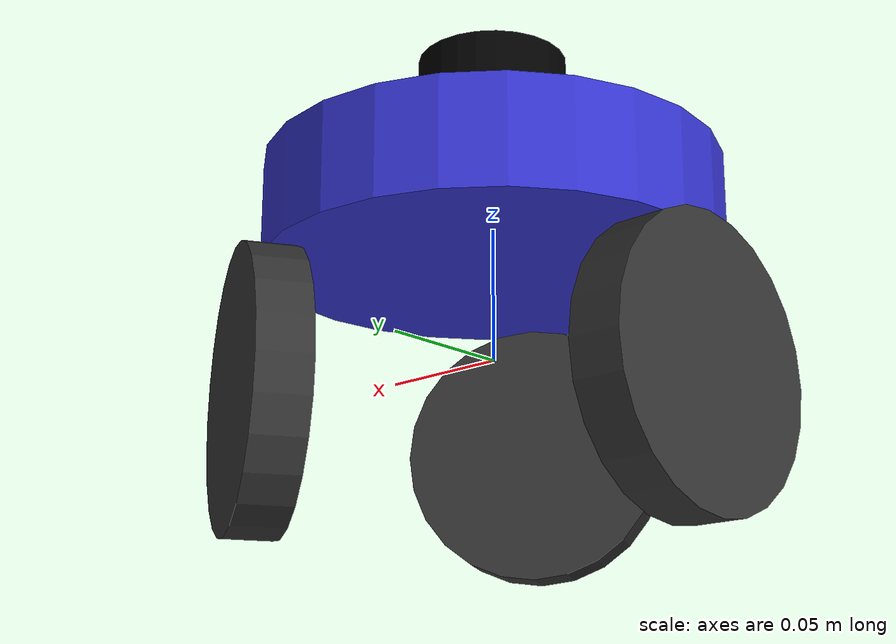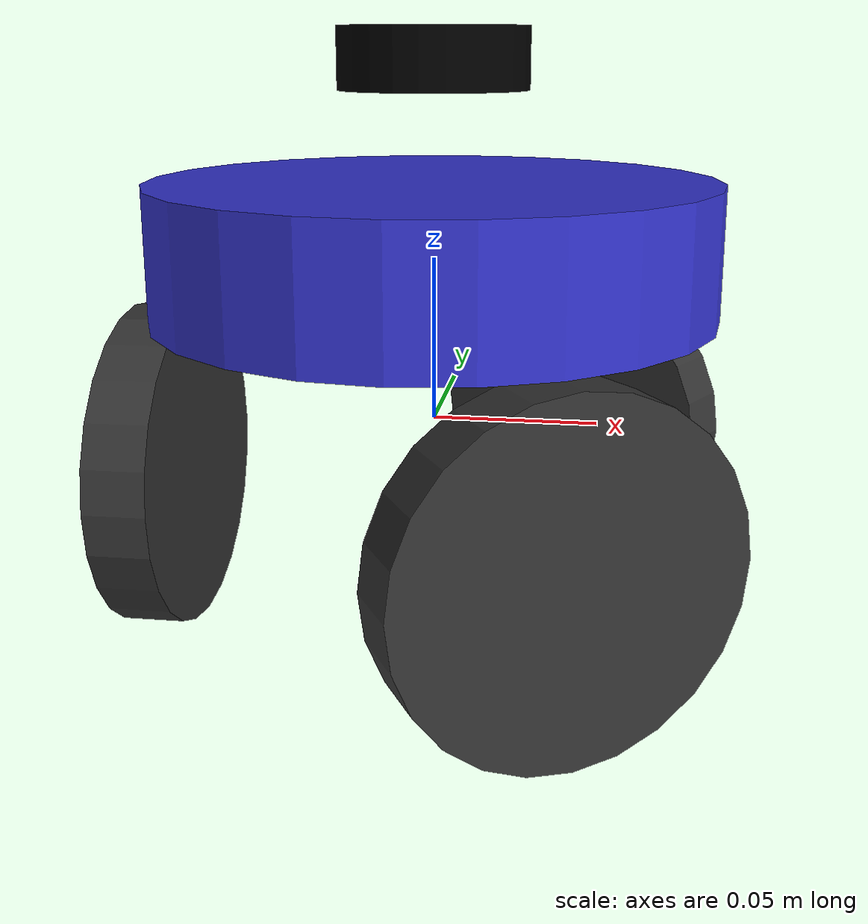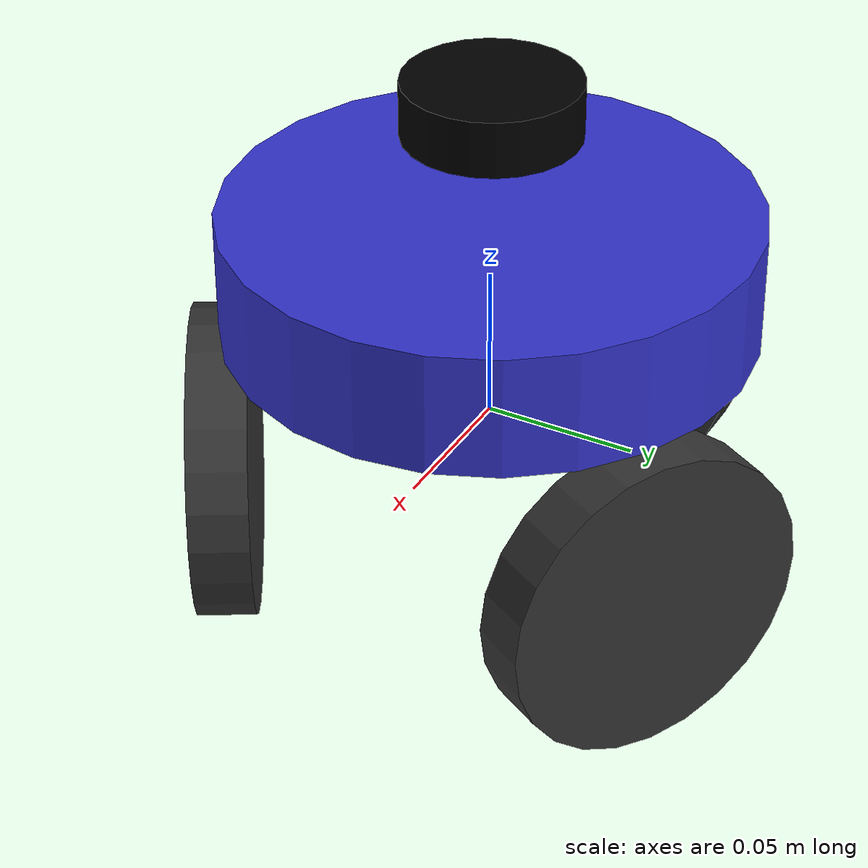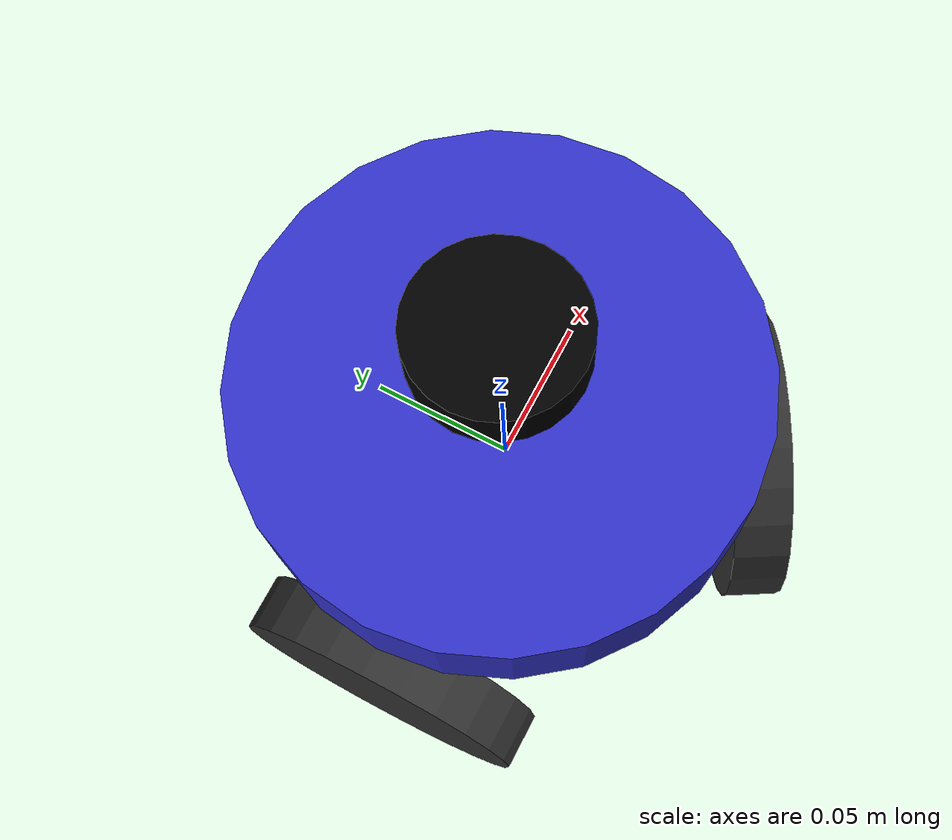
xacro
<?xml version="1.0"?>
<robot xmlns:xacro="http://www.ros.org/wiki/xacro" name="robot">

    <!-- Constants for robot mechanical parameters -->
    <xacro:property name="PI" value="3.1415926535897931"/>
    <xacro:property name="chassis_mass" value="1.074"/>
    <xacro:property name="chassis_height" value="0.04"/>
    <xacro:property name="robot_height" value="0.053"/>
    <xacro:property name="wheel_mass" value="0.105" />
    <xacro:property name="wheel_radius" value="0.0508" />

    <!-- The chassis radius plus half the wheel thickness equals the robot radius -->
    <xacro:property name="chassis_radius" value="0.085"/>
    <xacro:property name="wheel_thickness" value="0.01905" />

    <xacro:include filename="$(find omni)/description/wheel.urdf.xacro"/>
    <xacro:include filename="$(find omni)/description/materials.urdf.xacro"/>
    <xacro:include filename="$(find omni)/description/lidar.urdf.xacro"/>
    <xacro:include filename="$(find omni)/description/ros2_control.urdf.xacro"/>
    <xacro:include filename="$(find omni)/description/gazebo.urdf.xacro"/>

    <!-- Simulation argument -->
    <xacro:arg name="use_sim" default="false"/>

    <link name="base_link"></link>

    <joint name="base_link_joint" type="fixed">
        <origin xyz="0 0 ${robot_height}" rpy="0 0 0" />
        <parent link="base_link"/>
        <child link="chassis_link" />
    </joint>

    <link name="chassis_link">
        <visual name="">
            <origin xyz="0.0 0.0 0.0" rpy="0.0 0.0 0.0"/>
            <geometry>
                <cylinder radius="${chassis_radius}" length="${chassis_height}"/>
            </geometry>
            <material name="blue"/>
        </visual>

        <collision>
            <origin xyz="0.0 0.0 0.0" rpy="0.0 0.0 0.0"/>
            <geometry>
                <cylinder radius="${chassis_radius}" length="${chassis_height}"/>
            </geometry>
            <material name="blue"/>
        </collision>

        <inertial>
            <origin xyz="0.0 0.0 0.0" rpy="0.0 0.0 0.0"/>
            <mass value="1.634"/>
            <inertia ixx="0.00316977667"
                        ixy="0.0"
                        ixz="0.0"
                        iyy="0.00316977667"
                        iyz="0.0"
                        izz="0.005903752"/>
        </inertial>
    </link>

    <!-- 2D lidar mounted above the chassis -->
    <xacro:lidar_sensor parent="chassis_link" prefix="lidar"/>

    <!-- THREE OMNI WHEELS at 120° intervals -->
    <!-- Wheel 1: Rear (180 degrees) -->
    <xacro:wheel parent="chassis_link" suffix="1" theta="${PI}"/>

    <!-- Wheel 2: Front Right (-60 degrees) -->
    <xacro:wheel parent="chassis_link" suffix="2" theta="${-PI/3}"/>

    <!-- Wheel 3: Front Left (60 degrees) -->
    <xacro:wheel parent="chassis_link" suffix="3" theta="${PI/3}"/>

    <!-- ROS2 Control Integration -->
    <xacro:omni_ros2_control name="OmniWheelSystem" prefix=""
                             use_sim="$(arg use_sim)"
                             use_fake_hardware="false"/>

    <!-- Gazebo plugins -->
    <xacro:omni_gazebo name="omni_robot"/>

</robot>

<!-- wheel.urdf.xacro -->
<robot xmlns:xacro="http://www.ros.org/wiki/xacro">
    <xacro:property name="PI" value="3.1415926535897931"/>

    <xacro:macro name="inertial_cylinder" params="mass length radius *origin">
        <inertial>
            <xacro:insert_block name="origin"/>
            <mass value="${mass}" />
            <inertia
                ixx="${(1/12) * mass * (3*radius*radius + length*length)}"
                ixy="0.0"
                ixz="0.0"
                iyy="${(1/12) * mass * (3*radius*radius + length*length)}"
                iyz="0.0"
                izz="${(1/2) * mass * (radius*radius)}" />
        </inertial>
    </xacro:macro>

    <xacro:macro name="wheel" params="parent suffix theta">
        <joint name="wheel${suffix}_joint" type="continuous">
            <origin xyz="${chassis_radius*cos(theta)} ${chassis_radius*sin(theta)} ${-chassis_height/2 - wheel_radius}"
                    rpy="0.0 ${PI/2} ${theta+PI}"/>
            <parent link="${parent}"/>
            <child link="wheel${suffix}_link"/>
            <axis xyz="0.0 0.0 1.0"/>
        </joint>

        <link name="wheel${suffix}_link">
            <visual>
                <origin xyz="0.0 0.0 0.0" rpy="0.0 0.0 0.0"/>
                <geometry>
                    <cylinder radius="${wheel_radius}" length="${wheel_thickness}"/>
                </geometry>
                <material name="grey"/>
            </visual>

            <collision>
                <origin xyz="0.0 0.0 0.0" rpy="0.0 0.0 0.0"/>
                <geometry>
                    <cylinder radius="${wheel_radius}" length="${wheel_thickness}"/>
                </geometry>
            </collision>

            <inertial>
                <origin xyz="0.0 0.0 0.0" rpy="0.0 0.0 0.0"/>
                <mass value="0.113"/>
                <inertia ixx="0.000089064"
                         ixy="0.0"
                         ixz="0.0"
                         iyy="0.000089064"
                         iyz="0.0"
                         izz="0.000173339"/>
            </inertial>
        </link>

        <gazebo reference="wheel${suffix}_link">
            <material>Gazebo/Grey</material>
            <mu1>1.0</mu1>
            <mu2>0.001</mu2>
            <fdir1>0 1 0</fdir1>
        </gazebo>
    </xacro:macro>
</robot>

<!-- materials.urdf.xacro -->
<robot xmlns:xacro="http://www.ros.org/wiki/xacro" name="robot">
  <material name="green">
    <color rgba="0.0 0.8 0.0 1.0"/>
  </material>

  <material name="black">
    <color rgba="0.0 0.0 0.0 1.0"/>
  </material>

  <material name="grey">
    <color rgba="0.2 0.2 0.2 1.0"/>
  </material>

  <material name="red">
    <color rgba="1.0 0.0 0.0 1.0"/>
  </material>

  <material name="blue">
    <color rgba="0.2 0.2 0.8 1.0"/>
  </material>
</robot>

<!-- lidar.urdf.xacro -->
<robot xmlns:xacro="http://www.ros.org/wiki/xacro">

    <xacro:macro name="lidar_sensor" params="parent prefix:=lidar">
        <joint name="${prefix}_joint" type="fixed">
            <origin xyz="0 0 0.055" rpy="0 0 0"/>
            <parent link="${parent}"/>
            <child link="${prefix}_link"/>
        </joint>

        <link name="${prefix}_link">
            <visual>
                <origin xyz="0 0 0" rpy="0 0 0"/>
                <geometry>
                    <cylinder radius="0.028" length="0.018"/>
                </geometry>
                <material name="black"/>
            </visual>
            <collision>
                <origin xyz="0 0 0" rpy="0 0 0"/>
                <geometry>
                    <cylinder radius="0.028" length="0.018"/>
                </geometry>
            </collision>
            <inertial>
                <origin xyz="0 0 0" rpy="0 0 0"/>
                <mass value="0.05"/>
                <inertia ixx="0.00002" ixy="0.0" ixz="0.0"
                         iyy="0.00002" iyz="0.0" izz="0.00002"/>
            </inertial>
        </link>

        <gazebo reference="${prefix}_link">
            <material>Gazebo/Black</material>
            <sensor name="${prefix}" type="gpu_lidar">
                <pose>0 0 0 0 0 0</pose>
                <topic>/scan</topic>
                <update_rate>10</update_rate>
                <always_on>true</always_on>
                <visualize>true</visualize>
                <lidar>
                    <scan>
                        <horizontal>
                            <samples>360</samples>
                            <resolution>1</resolution>
                            <min_angle>-3.14159</min_angle>
                            <max_angle>3.14159</max_angle>
                        </horizontal>
                    </scan>
                    <range>
                        <min>0.08</min>
                        <max>6.0</max>
                        <resolution>0.01</resolution>
                    </range>
                    <noise>
                        <type>gaussian</type>
                        <mean>0.0</mean>
                        <stddev>0.01</stddev>
                    </noise>
                </lidar>
            </sensor>
        </gazebo>
    </xacro:macro>

</robot>
